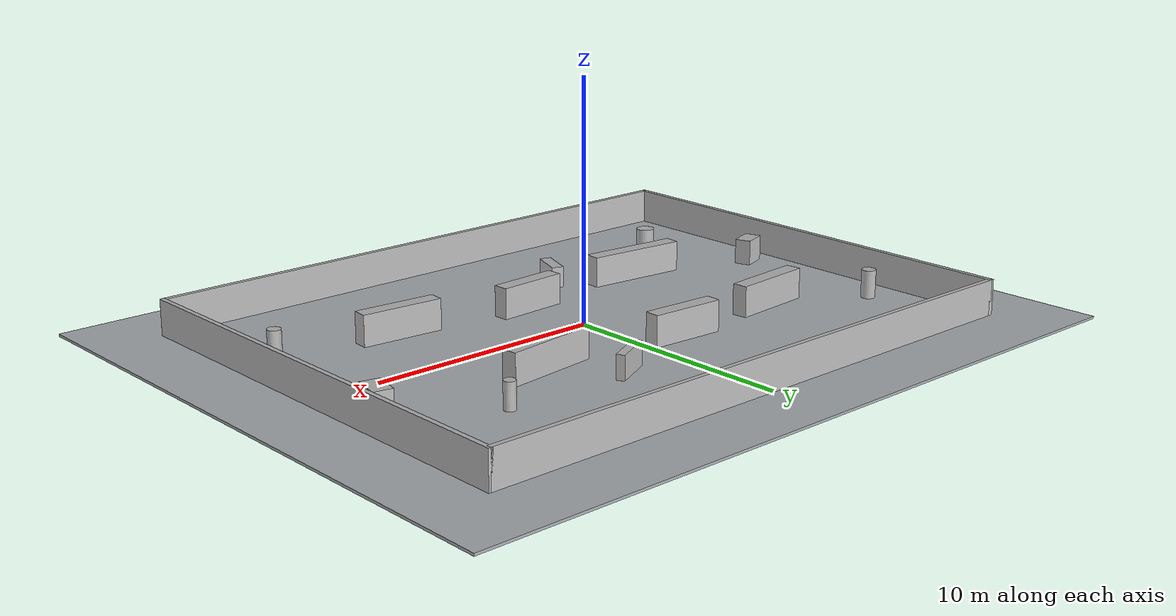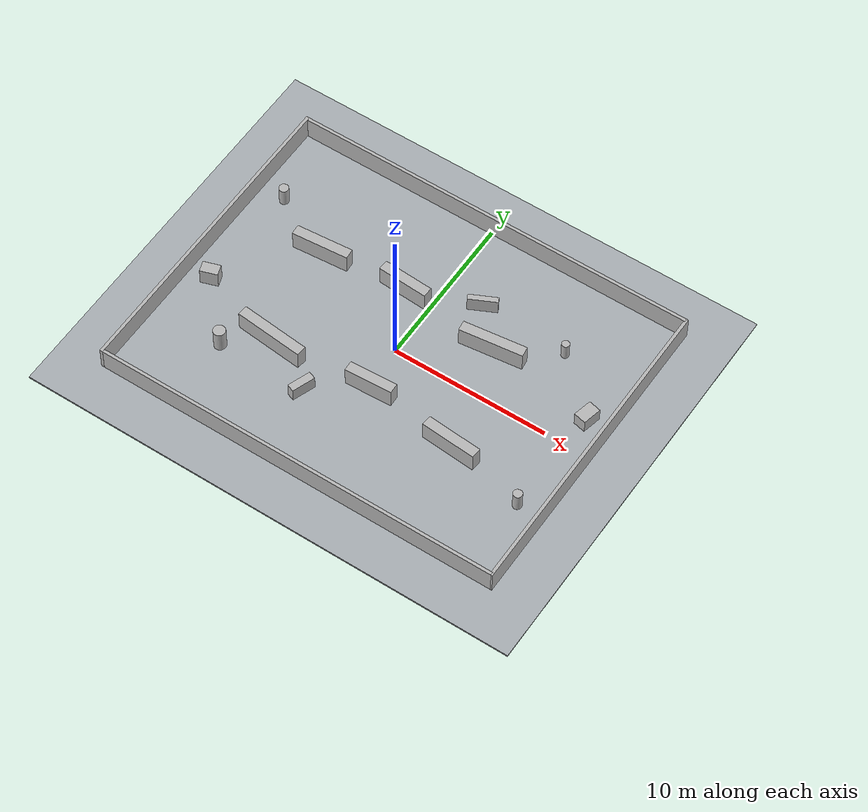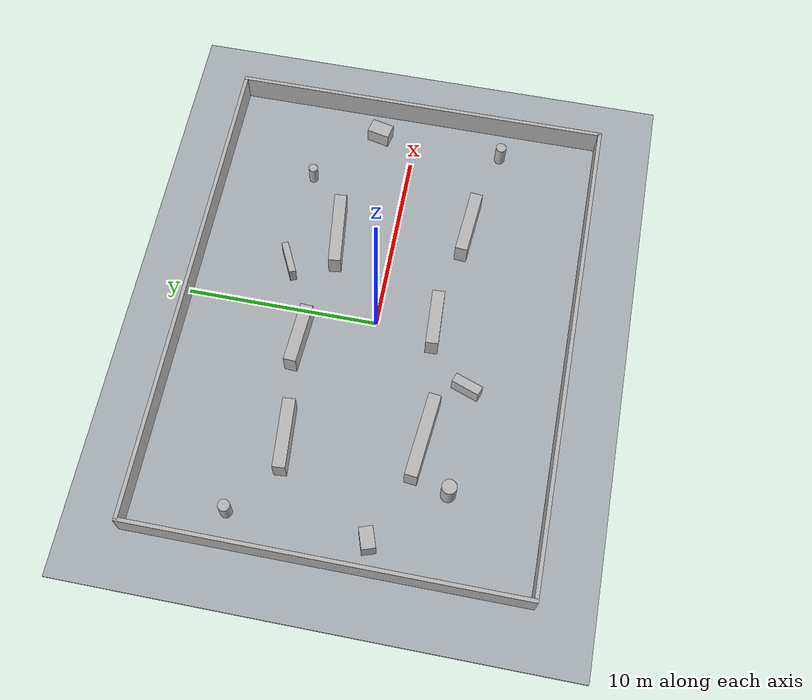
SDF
<?xml version="1.0"?>
<sdf version="1.10">
  <world name="slam_world">
    <physics name="default_physics" type="ode">
      <max_step_size>0.004</max_step_size>
      <real_time_factor>1.0</real_time_factor>
      <real_time_update_rate>250</real_time_update_rate>
    </physics>

    <plugin filename="gz-sim-physics-system" name="gz::sim::systems::Physics"/>
    <plugin filename="gz-sim-user-commands-system" name="gz::sim::systems::UserCommands"/>
    <plugin filename="gz-sim-scene-broadcaster-system" name="gz::sim::systems::SceneBroadcaster"/>
    <plugin filename="gz-sim-imu-system" name="gz::sim::systems::Imu"/>
    <plugin filename="gz-sim-sensors-system" name="gz::sim::systems::Sensors">
      <render_engine>ogre2</render_engine>
    </plugin>

    <gravity>0 0 -9.81</gravity>

    <scene>
      <ambient>0.45 0.45 0.45 1</ambient>
      <background>0.75 0.80 0.85 1</background>
      <shadows>false</shadows>
      <grid>true</grid>
    </scene>

    <light name="sun" type="directional">
      <cast_shadows>false</cast_shadows>
      <pose>12 -4 16 0 0 0</pose>
      <diffuse>0.9 0.9 0.9 1</diffuse>
      <specular>0.2 0.2 0.2 1</specular>
      <attenuation>
        <range>1000</range>
        <constant>0.9</constant>
        <linear>0.01</linear>
        <quadratic>0.001</quadratic>
      </attenuation>
      <direction>-0.4 0.2 -1.0</direction>
    </light>

    <model name="ground_plane">
      <static>true</static>
      <link name="ground_link">
        <collision name="ground_collision">
          <pose>0 0 -0.05 0 0 0</pose>
          <geometry><box><size>32 26 0.10</size></box></geometry>
        </collision>
        <visual name="ground_visual">
          <pose>0 0 -0.05 0 0 0</pose>
          <geometry><box><size>32 26 0.10</size></box></geometry>
          <material>
            <ambient>0.66 0.68 0.70 1</ambient>
            <diffuse>0.66 0.68 0.70 1</diffuse>
          </material>
        </visual>
      </link>
    </model>

    <model name="warehouse_shell">
      <static>true</static>
      <link name="shell_link">
        <collision name="north_wall_collision"><pose>0 10 0.75 0 0 0</pose><geometry><box><size>26 0.20 1.50</size></box></geometry></collision>
        <visual name="north_wall_visual"><pose>0 10 0.75 0 0 0</pose><geometry><box><size>26 0.20 1.50</size></box></geometry></visual>
        <collision name="south_wall_collision"><pose>0 -10 0.75 0 0 0</pose><geometry><box><size>26 0.20 1.50</size></box></geometry></collision>
        <visual name="south_wall_visual"><pose>0 -10 0.75 0 0 0</pose><geometry><box><size>26 0.20 1.50</size></box></geometry></visual>
        <collision name="east_wall_collision"><pose>13 0 0.75 0 0 0</pose><geometry><box><size>0.20 20.2 1.50</size></box></geometry></collision>
        <visual name="east_wall_visual"><pose>13 0 0.75 0 0 0</pose><geometry><box><size>0.20 20.2 1.50</size></box></geometry></visual>
        <collision name="west_wall_collision"><pose>-13 0 0.75 0 0 0</pose><geometry><box><size>0.20 20.2 1.50</size></box></geometry></collision>
        <visual name="west_wall_visual"><pose>-13 0 0.75 0 0 0</pose><geometry><box><size>0.20 20.2 1.50</size></box></geometry></visual>
      </link>
    </model>

    <model name="warehouse_features">
      <static>true</static>
      <link name="features_link">
        <!-- Staggered shelf rows keep the central eastbound aisle clear. -->
        <collision name="rack_nw_collision"><pose>-7.2 3.2 0.65 0 0 0.08</pose><geometry><box><size>3.6 0.65 1.30</size></box></geometry></collision>
        <visual name="rack_nw_visual"><pose>-7.2 3.2 0.65 0 0 0.08</pose><geometry><box><size>3.6 0.65 1.30</size></box></geometry></visual>
        <collision name="rack_nc_collision"><pose>-1.8 3.7 0.65 0 0 -0.06</pose><geometry><box><size>3.2 0.65 1.30</size></box></geometry></collision>
        <visual name="rack_nc_visual"><pose>-1.8 3.7 0.65 0 0 -0.06</pose><geometry><box><size>3.2 0.65 1.30</size></box></geometry></visual>
        <collision name="rack_ne_collision"><pose>4.6 3.0 0.65 0 0 0.12</pose><geometry><box><size>4.0 0.65 1.30</size></box></geometry></collision>
        <visual name="rack_ne_visual"><pose>4.6 3.0 0.65 0 0 0.12</pose><geometry><box><size>4.0 0.65 1.30</size></box></geometry></visual>
        <collision name="rack_sw_collision"><pose>-6.0 -3.5 0.65 0 0 -0.10</pose><geometry><box><size>4.4 0.65 1.30</size></box></geometry></collision>
        <visual name="rack_sw_visual"><pose>-6.0 -3.5 0.65 0 0 -0.10</pose><geometry><box><size>4.4 0.65 1.30</size></box></geometry></visual>
        <collision name="rack_sc_collision"><pose>0.4 -3.0 0.65 0 0 0.05</pose><geometry><box><size>3.0 0.65 1.30</size></box></geometry></collision>
        <visual name="rack_sc_visual"><pose>0.4 -3.0 0.65 0 0 0.05</pose><geometry><box><size>3.0 0.65 1.30</size></box></geometry></visual>
        <collision name="rack_se_collision"><pose>6.3 -3.8 0.65 0 0 -0.08</pose><geometry><box><size>3.5 0.65 1.30</size></box></geometry></collision>
        <visual name="rack_se_visual"><pose>6.3 -3.8 0.65 0 0 -0.08</pose><geometry><box><size>3.5 0.65 1.30</size></box></geometry></visual>

        <!-- Unequal columns and boxes break rotational and translational symmetry. -->
        <collision name="column_nw_collision"><pose>-11.3 5.2 0.60 0 0 0</pose><geometry><cylinder><radius>0.30</radius><length>1.20</length></cylinder></geometry></collision>
        <visual name="column_nw_visual"><pose>-11.3 5.2 0.60 0 0 0</pose><geometry><cylinder><radius>0.30</radius><length>1.20</length></cylinder></geometry></visual>
        <collision name="column_ne_collision"><pose>8.1 5.1 0.55 0 0 0</pose><geometry><cylinder><radius>0.24</radius><length>1.10</length></cylinder></geometry></collision>
        <visual name="column_ne_visual"><pose>8.1 5.1 0.55 0 0 0</pose><geometry><cylinder><radius>0.24</radius><length>1.10</length></cylinder></geometry></visual>
        <collision name="column_sw_collision"><pose>-8.4 -5.2 0.70 0 0 0</pose><geometry><cylinder><radius>0.38</radius><length>1.40</length></cylinder></geometry></collision>
        <visual name="column_sw_visual"><pose>-8.4 -5.2 0.70 0 0 0</pose><geometry><cylinder><radius>0.38</radius><length>1.40</length></cylinder></geometry></visual>
        <collision name="column_se_collision"><pose>11.3 -4.8 0.60 0 0 0</pose><geometry><cylinder><radius>0.28</radius><length>1.20</length></cylinder></geometry></collision>
        <visual name="column_se_visual"><pose>11.3 -4.8 0.60 0 0 0</pose><geometry><cylinder><radius>0.28</radius><length>1.20</length></cylinder></geometry></visual>
        <collision name="box_west_collision"><pose>-11.5 -1.8 0.55 0 0 0.32</pose><geometry><box><size>1.1 0.7 1.1</size></box></geometry></collision>
        <visual name="box_west_visual"><pose>-11.5 -1.8 0.55 0 0 0.32</pose><geometry><box><size>1.1 0.7 1.1</size></box></geometry></visual>
        <collision name="box_east_collision"><pose>11.5 2.0 0.45 0 0 -0.22</pose><geometry><box><size>0.8 1.2 0.9</size></box></geometry></collision>
        <visual name="box_east_visual"><pose>11.5 2.0 0.45 0 0 -0.22</pose><geometry><box><size>0.8 1.2 0.9</size></box></geometry></visual>
        <collision name="triangle_anchor_collision"><pose>2.5 5.2 0.50 0 0 0.45</pose><geometry><box><size>1.8 0.35 1.0</size></box></geometry></collision>
        <visual name="triangle_anchor_visual"><pose>2.5 5.2 0.50 0 0 0.45</pose><geometry><box><size>1.8 0.35 1.0</size></box></geometry></visual>
        <collision name="south_anchor_collision"><pose>-2.8 -5.2 0.45 0 0 -0.35</pose><geometry><box><size>0.5 1.5 0.9</size></box></geometry></collision>
        <visual name="south_anchor_visual"><pose>-2.8 -5.2 0.45 0 0 -0.35</pose><geometry><box><size>0.5 1.5 0.9</size></box></geometry></visual>
      </link>
    </model>

    <gui fullscreen="false">
      <plugin filename="MinimalScene" name="3D View">
        <gz-gui>
          <title>3D View</title>
          <property key="showTitleBar" type="bool">false</property>
          <property key="state" type="string">docked</property>
        </gz-gui>
        <engine>ogre2</engine>
        <scene>scene</scene>
        <ambient_light>0.4 0.4 0.4</ambient_light>
        <background_color>0.75 0.80 0.85</background_color>
        <camera_pose>18 -24 24 0 0.62 2.25</camera_pose>
        <camera_clip><near>0.10</near><far>1000</far></camera_clip>
      </plugin>
      <plugin filename="GzSceneManager" name="Scene Manager"/>
      <plugin filename="WorldControl" name="World control">
        <gz-gui>
          <title>World control</title>
          <property key="showTitleBar" type="bool">false</property>
          <property key="state" type="string">docked</property>
        </gz-gui>
        <play_pause>true</play_pause>
        <step>true</step>
        <start_paused>false</start_paused>
      </plugin>
    </gui>
  </world>
</sdf>
